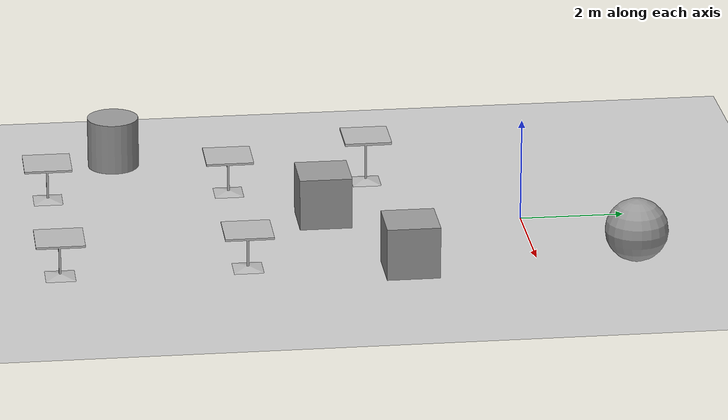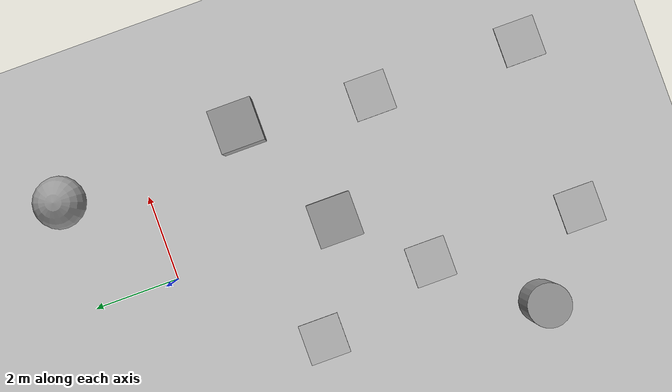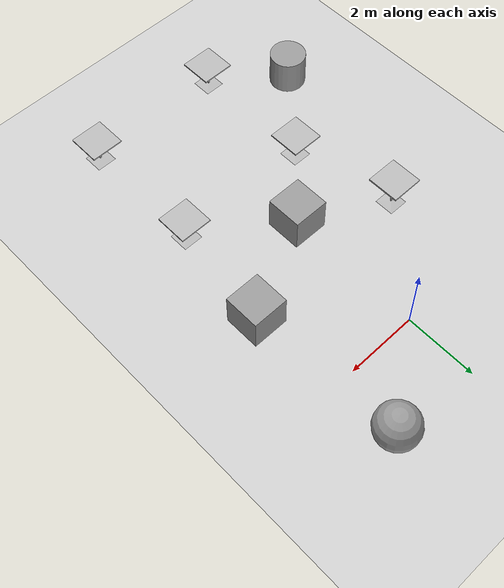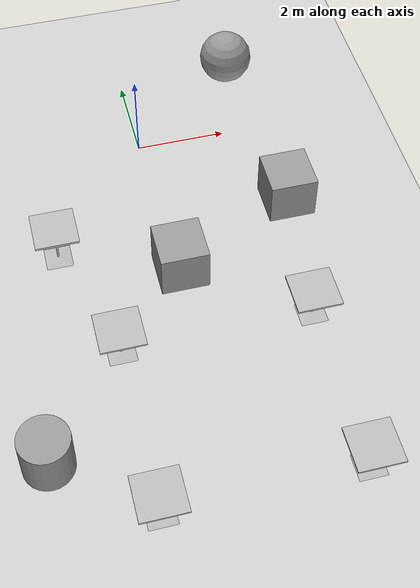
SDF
<sdf version="1.6">
 <world name="default">
  <light name="sun" type="directional">
   <pose>0 0 10 0 -0 0</pose>
   <diffuse>0.8 0.8 0.8 1</diffuse>
   <specular>0.2 0.2 0.2 1</specular>
   <attenuation>
    <range>1000</range>
    <constant>0.9</constant>
    <linear>0.01</linear>
    <quadratic>0.001</quadratic>
   </attenuation>
   <direction>0 0.5 -0.9</direction>
  </light>
  <light name="point_light" type="point">
   <pose>0 -0.377195 6.59868 0 -0 0</pose>
   <diffuse>0.784314 0.784314 0.784314 1</diffuse>
   <specular>0.0980392 0.0980392 0.0980392 1</specular>
   <attenuation>
    <range>50</range>
    <constant>0.8</constant>
    <linear>0</linear>
    <quadratic>0.001</quadratic>
   </attenuation>
   <cast_shadows>0</cast_shadows>
   <direction>0 0 -1</direction>
  </light>
  <model name="ground_plane">
   <static>1</static>
   <link name="link">
    <collision name="collision">
     <geometry><plane><normal>0 0 1</normal><size>100 100</size></plane></geometry>
     <surface><friction><ode><mu>100</mu><mu2>50</mu2></ode></friction></surface>
    </collision>
    <visual name="visual">
     <cast_shadows>0</cast_shadows>
     <geometry><plane><normal>0 0 1</normal><size>100 100</size></plane></geometry>
     <material>
      <script><uri>file://media/materials/scripts/gazebo.material</uri><name>Gazebo/Grey</name></script>
     </material>
    </visual>
   </link>
  </model>
  <model name="table2">
   <static>1</static>
   <link name="link">
    <collision name="surface">
     <pose>0 0 0.755 0 -0 0</pose>
     <geometry><box><size>0.913 0.913 0.04</size></box></geometry>
    </collision>
    <collision name="column">
     <pose>0 0 0.37 0 -0 0</pose>
     <geometry><box><size>0.042 0.042 0.74</size></box></geometry>
    </collision>
    <collision name="base">
     <pose>0 0 0.02 0 -0 0</pose>
     <geometry><box><size>0.56 0.56 0.04</size></box></geometry>
    </collision>
    <visual name="visual">
     <geometry><mesh><uri>model://cafe_table/meshes/cafe_table.dae</uri><scale>1 1 1</scale></mesh></geometry>
    </visual>
   </link>
   <pose>2.4 -5.5 0.2 0 -0 0</pose>
  </model>
  <model name="table3">
   <static>1</static>
   <link name="link">
    <collision name="surface">
     <pose>0 0 0.755 0 -0 0</pose>
     <geometry><box><size>0.913 0.913 0.32</size></box></geometry>
    </collision>
    <collision name="column">
     <pose>0 0 0.37 0 -0 0</pose>
     <geometry><box><size>0.042 0.042 0.74</size></box></geometry>
    </collision>
    <collision name="base">
     <pose>0 0 0.02 0 -0 0</pose>
     <geometry><box><size>0.56 0.56 0.04</size></box></geometry>
    </collision>
    <visual name="visual">
     <geometry><mesh><uri>model://cafe_table/meshes/cafe_table.dae</uri><scale>1 1 1</scale></mesh></geometry>
    </visual>
   </link>
   <pose>-1.5 -5.5 0.2 0 -0 0</pose>
  </model>
  <model name="table4">
   <static>1</static>
   <link name="link">
    <collision name="surface">
     <pose>0 0 0.755 0 -0 0</pose>
     <geometry><box><size>0.913 0.913 0.32</size></box></geometry>
    </collision>
    <collision name="column">
     <pose>0 0 0.37 0 -0 0</pose>
     <geometry><box><size>0.042 0.042 0.74</size></box></geometry>
    </collision>
    <collision name="base">
     <pose>0 0 0.02 0 -0 0</pose>
     <geometry><box><size>0.56 0.56 0.04</size></box></geometry>
    </collision>
    <visual name="visual">
     <geometry><mesh><uri>model://cafe_table/meshes/cafe_table.dae</uri><scale>1 1 1</scale></mesh></geometry>
    </visual>
   </link>
   <pose>2.4 -9 0.2 0 -0 0</pose>
  </model>
  <model name="table5">
   <static>1</static>
   <link name="link">
    <collision name="surface">
     <pose>0 0 0.755 0 -0 0</pose>
     <geometry><box><size>0.913 0.913 0.32</size></box></geometry>
    </collision>
    <collision name="column">
     <pose>0 0 0.37 0 -0 0</pose>
     <geometry><box><size>0.042 0.042 0.74</size></box></geometry>
    </collision>
    <collision name="base">
     <pose>0 0 0.02 0 -0 0</pose>
     <geometry><box><size>0.56 0.56 0.04</size></box></geometry>
    </collision>
    <visual name="visual">
     <geometry><mesh><uri>model://cafe_table/meshes/cafe_table.dae</uri><scale>1 1 1</scale></mesh></geometry>
    </visual>
   </link>
   <pose>-1.5 -9 0.2 0 -0 0</pose>
  </model>
  <gravity>0 0 -9.8</gravity>
  <magnetic_field>6e-06 2.3e-05 -4.2e-05</magnetic_field>
  <atmosphere type="adiabatic"/>
  <physics name="default_physics" default="0" type="ode">
   <max_step_size>0.001</max_step_size>
   <real_time_factor>1</real_time_factor>
   <real_time_update_rate>1000</real_time_update_rate>
  </physics>
  <scene><ambient>0.4 0.4 0.4 1</ambient><background>0.7 0.7 0.7 1</background><shadows>1</shadows></scene>
  <spherical_coordinates>
   <surface_model>EARTH_WGS84</surface_model>
   <latitude_deg>0</latitude_deg>
   <longitude_deg>0</longitude_deg>
   <elevation>0</elevation>
   <heading_deg>0</heading_deg>
  </spherical_coordinates>
  <model name="unit_sphere">
   <pose>2.53091 1.81166 0.6898 0 -0 0</pose>
   <link name="link">
    <inertial>
     <mass>1</mass>
     <inertia><ixx>0.1</ixx><ixy>0</ixy><ixz>0</ixz><iyy>0.1</iyy><iyz>0</iyz><izz>0.1</izz></inertia>
    </inertial>
    <collision name="collision"><geometry><sphere><radius>0.5</radius></sphere></geometry></collision>
    <visual name="visual">
     <geometry><sphere><radius>0.6</radius></sphere></geometry>
     <material>
      <script><uri>file://media/materials/scripts/gazebo.material</uri><name>Gazebo/Grey</name></script>
     </material>
    </visual>
   </link>
  </model>
  <model name="unit_box">
   <pose>2.77273 -2.49368 0.6898 -0 -0 -0</pose>
   <link name="link">
    <inertial>
     <mass>1</mass>
     <inertia>
      <ixx>0.166667</ixx>
      <ixy>0</ixy>
      <ixz>0</ixz>
      <iyy>0.166667</iyy>
      <iyz>0</iyz>
      <izz>0.166667</izz>
     </inertia>
    </inertial>
    <collision name="collision"><geometry><box><size>1 1 1</size></box></geometry></collision>
    <visual name="visual">
     <geometry><box><size>1 1 1</size></box></geometry>
     <material>
      <script><uri>file://media/materials/scripts/gazebo.material</uri><name>Gazebo/Grey</name></script>
     </material>
    </visual>
   </link>
  </model>
  <model name="cafe_table">
   <static>1</static>
   <link name="link">
    <collision name="surface">
     <pose>0 0 0.755 0 -0 0</pose>
     <geometry><box><size>0.913 0.913 0.32</size></box></geometry>
    </collision>
    <collision name="column">
     <pose>0 0 0.37 0 -0 0</pose>
     <geometry><box><size>0.042 0.042 0.74</size></box></geometry>
    </collision>
    <collision name="base">
     <pose>0 0 0.02 0 -0 0</pose>
     <geometry><box><size>0.56 0.56 0.04</size></box></geometry>
    </collision>
    <visual name="visual">
     <geometry><mesh><uri>model://cafe_table/meshes/cafe_table.dae</uri><scale>1 1 1.25</scale></mesh></geometry>
    </visual>
   </link>
   <pose>-2.30924 -2.71881 0 0 -0 0</pose>
  </model>
  <model name="unit_cylinder">
   <pose>-3.26625 -7.60601 0.68979 0 -0 1e-06</pose>
   <link name="link">
    <inertial>
     <mass>1</mass>
     <inertia><ixx>0.145833</ixx><ixy>0</ixy><ixz>0</ixz><iyy>0.145833</iyy><iyz>0</iyz><izz>0.125</izz></inertia>
    </inertial>
    <collision name="collision">
     <geometry><cylinder><radius>0.5</radius><length>1</length></cylinder></geometry>
    </collision>
    <visual name="visual">
     <geometry><cylinder><radius>0.5</radius><length>1</length></cylinder></geometry>
     <material>
      <script><uri>file://media/materials/scripts/gazebo.material</uri><name>Gazebo/Grey</name></script>
     </material>
    </visual>
   </link>
  </model>
  <model name="unit_box_0">
   <pose>0.090867 -3.82733 0.6898 -0 -0 -0</pose>
   <link name="link">
    <inertial>
     <mass>1</mass>
     <inertia>
      <ixx>0.166667</ixx>
      <ixy>0</ixy>
      <ixz>0</ixz>
      <iyy>0.166667</iyy>
      <iyz>0</iyz>
      <izz>0.166667</izz>
     </inertia>
    </inertial>
    <collision name="collision"><geometry><box><size>1 1 1</size></box></geometry></collision>
    <visual name="visual">
     <geometry><box><size>1 1 1</size></box></geometry>
     <material>
      <script><uri>file://media/materials/scripts/gazebo.material</uri><name>Gazebo/Grey</name></script>
     </material>
    </visual>
   </link>
  </model>
 </world>
</sdf>
